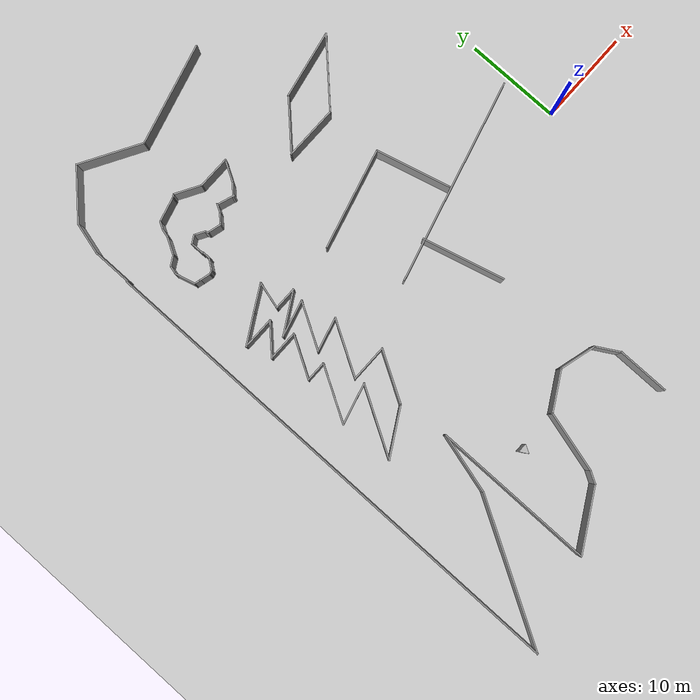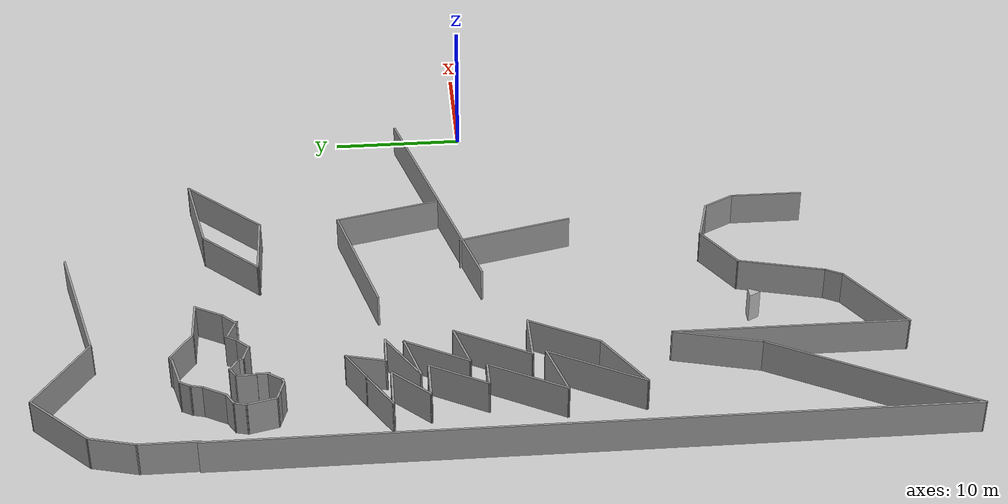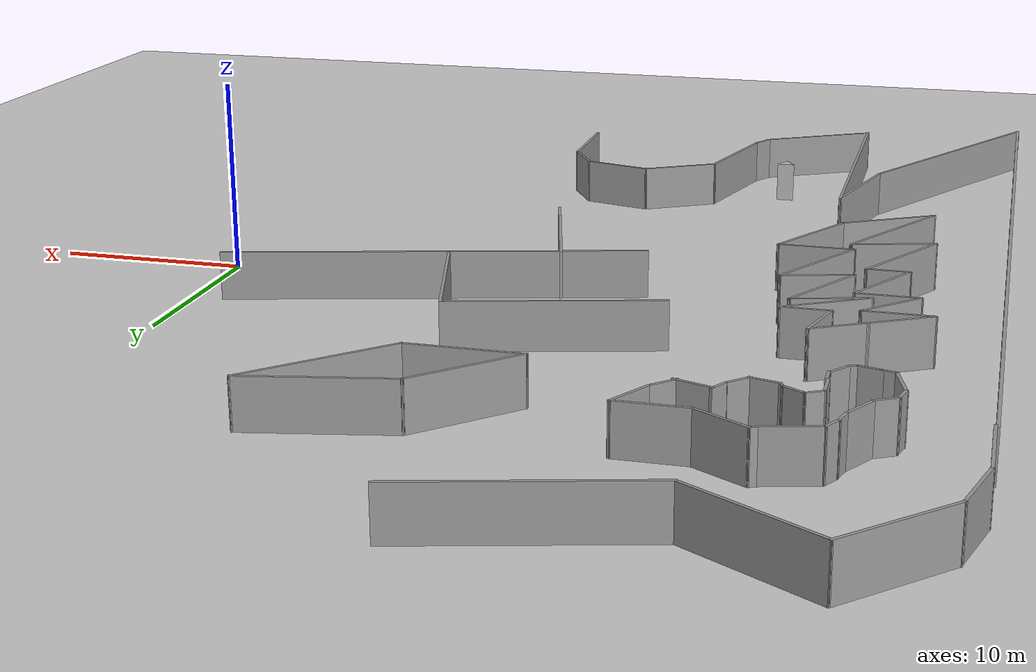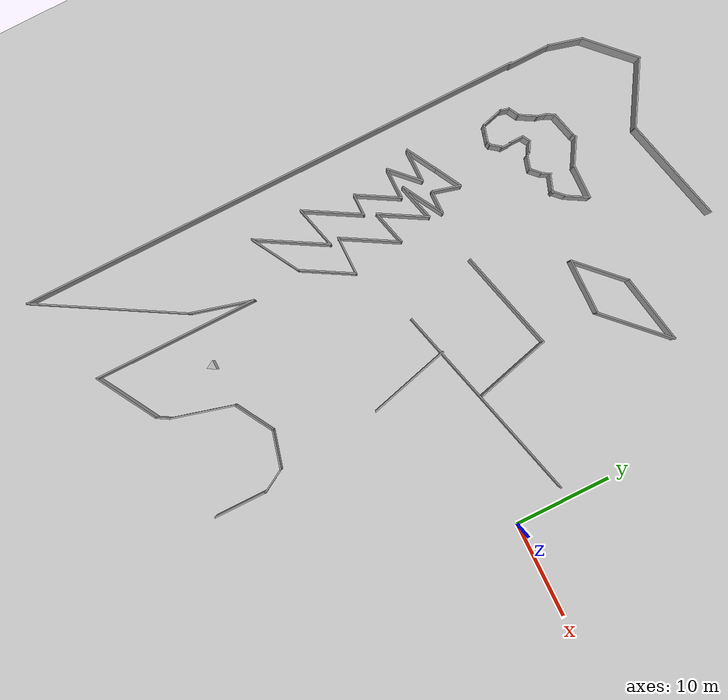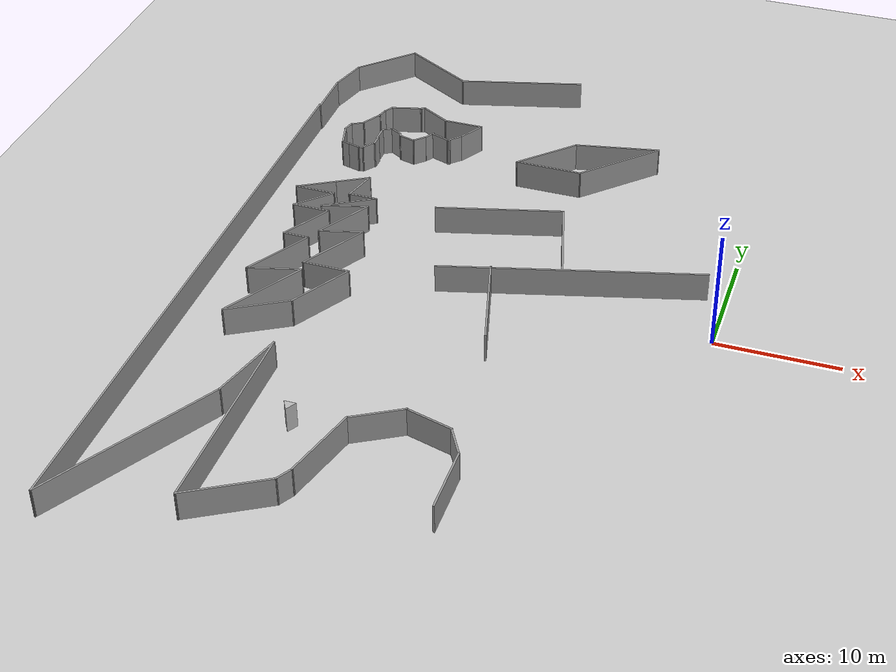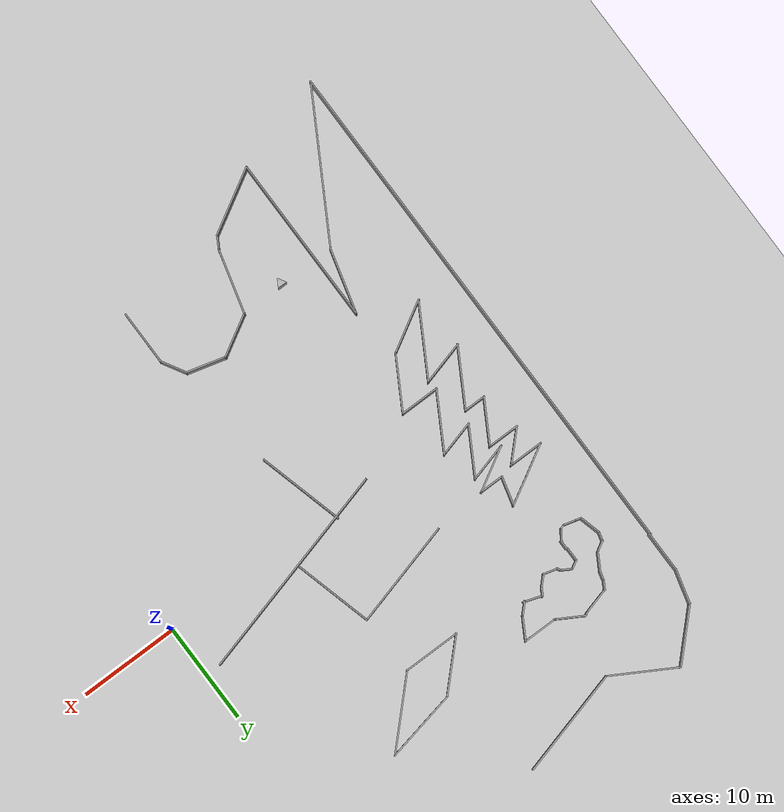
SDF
<sdf version="1.7">
 <world name="default">
  <model name="ground_plane">
   <static>1</static>
   <link name="link">
    <collision name="collision">
     <geometry><plane><normal>0 0 1</normal><size>100 100</size></plane></geometry>
     <surface><friction><ode><mu>100</mu><mu2>50</mu2></ode></friction></surface>
    </collision>
    <visual name="visual">
     <cast_shadows>0</cast_shadows>
     <geometry><plane><normal>0 0 1</normal><size>100 100</size></plane></geometry>
     <material>
      <script><uri>file://media/materials/scripts/gazebo.material</uri><name>Gazebo/Grey</name></script>
     </material>
    </visual>
   </link>
  </model>
  <model name="custommap5">
   <pose>6.86711 -0.856109 0 0 -0 0</pose>
   <link name="Wall_10">
    <collision name="Wall_10_Collision">
     <geometry><box><size>6.5 0.15 2.5</size></box></geometry>
     <pose>0 0 1.25 0 -0 0</pose>
    </collision>
    <visual name="Wall_10_Visual">
     <pose>0 0 1.25 0 -0 0</pose>
     <geometry><box><size>6.5 0.15 2.5</size></box></geometry>
     <material>
      <script><uri>file://media/materials/scripts/gazebo.material</uri><name>Gazebo/Grey</name></script>
      <ambient>1 1 1 1</ambient>
     </material>
     <meta><layer>0</layer></meta>
    </visual>
    <pose>-30.3175 -21.4493 0 0 -0 1.309</pose>
   </link>
   <link name="Wall_100">
    <collision name="Wall_100_Collision">
     <geometry><box><size>3.25 0.15 2.5</size></box></geometry>
     <pose>0 0 1.25 0 -0 0</pose>
    </collision>
    <visual name="Wall_100_Visual">
     <pose>0 0 1.25 0 -0 0</pose>
     <geometry><box><size>3.25 0.15 2.5</size></box></geometry>
     <material>
      <script><uri>file://media/materials/scripts/gazebo.material</uri><name>Gazebo/Grey</name></script>
      <ambient>1 1 1 1</ambient>
     </material>
     <meta><layer>0</layer></meta>
    </visual>
    <pose>-41.7743 4.90897 0 0 -0 0</pose>
   </link>
   <link name="Wall_101">
    <collision name="Wall_101_Collision">
     <geometry><box><size>4.75 0.15 2.5</size></box></geometry>
     <pose>0 0 1.25 0 -0 0</pose>
    </collision>
    <visual name="Wall_101_Visual">
     <pose>0 0 1.25 0 -0 0</pose>
     <geometry><box><size>4.75 0.15 2.5</size></box></geometry>
     <material>
      <script><uri>file://media/materials/scripts/gazebo.material</uri><name>Gazebo/Grey</name></script>
      <ambient>1 1 1 1</ambient>
     </material>
     <meta><layer>0</layer></meta>
    </visual>
    <pose>-41.3743 2.91711 0 0 -0 -2.0944</pose>
   </link>
   <link name="Wall_102">
    <collision name="Wall_102_Collision">
     <geometry><box><size>2.25 0.15 2.5</size></box></geometry>
     <pose>0 0 1.25 0 -0 0</pose>
    </collision>
    <visual name="Wall_102_Visual">
     <pose>0 0 1.25 0 -0 0</pose>
     <geometry><box><size>2.25 0.15 2.5</size></box></geometry>
     <material>
      <script><uri>file://media/materials/scripts/gazebo.material</uri><name>Gazebo/Grey</name></script>
      <ambient>1 1 1 1</ambient>
     </material>
     <meta><layer>0</layer></meta>
    </visual>
    <pose>-41.4743 0.925256 0 0 -0 0</pose>
   </link>
   <link name="Wall_103">
    <collision name="Wall_103_Collision">
     <geometry><box><size>6.25 0.15 2.5</size></box></geometry>
     <pose>0 0 1.25 0 -0 0</pose>
    </collision>
    <visual name="Wall_103_Visual">
     <pose>0 0 1.25 0 -0 0</pose>
     <geometry><box><size>6.25 0.15 2.5</size></box></geometry>
     <material>
      <script><uri>file://media/materials/scripts/gazebo.material</uri><name>Gazebo/Grey</name></script>
      <ambient>1 1 1 1</ambient>
     </material>
     <meta><layer>0</layer></meta>
    </visual>
    <pose>-41.9493 -1.71612 0 0 -0 -2.0944</pose>
   </link>
   <link name="Wall_104">
    <collision name="Wall_104_Collision">
     <geometry><box><size>4.5 0.15 2.5</size></box></geometry>
     <pose>0 0 1.25 0 -0 0</pose>
    </collision>
    <visual name="Wall_104_Visual">
     <pose>0 0 1.25 0 -0 0</pose>
     <geometry><box><size>4.5 0.15 2.5</size></box></geometry>
     <material>
      <script><uri>file://media/materials/scripts/gazebo.material</uri><name>Gazebo/Grey</name></script>
      <ambient>1 1 1 1</ambient>
     </material>
     <meta><layer>0</layer></meta>
    </visual>
    <pose>-41.3734 -3.79457 0 0 -0 0.261799</pose>
   </link>
   <link name="Wall_105">
    <collision name="Wall_105_Collision">
     <geometry><box><size>7.75 0.15 2.5</size></box></geometry>
     <pose>0 0 1.25 0 -0 0</pose>
    </collision>
    <visual name="Wall_105_Visual">
     <pose>0 0 1.25 0 -0 0</pose>
     <geometry><box><size>7.75 0.15 2.5</size></box></geometry>
     <material>
      <script><uri>file://media/materials/scripts/gazebo.material</uri><name>Gazebo/Grey</name></script>
      <ambient>1 1 1 1</ambient>
     </material>
     <meta><layer>0</layer></meta>
    </visual>
    <pose>-41.1725 -6.52253 0 0 -0 -2.0944</pose>
   </link>
   <link name="Wall_106">
    <collision name="Wall_106_Collision">
     <geometry><box><size>5.5 0.15 2.5</size></box></geometry>
     <pose>0 0 1.25 0 -0 0</pose>
    </collision>
    <visual name="Wall_106_Visual">
     <pose>0 0 1.25 0 -0 0</pose>
     <geometry><box><size>5.5 0.15 2.5</size></box></geometry>
     <material>
      <script><uri>file://media/materials/scripts/gazebo.material</uri><name>Gazebo/Grey</name></script>
      <ambient>1 1 1 1</ambient>
     </material>
     <meta><layer>0</layer></meta>
    </visual>
    <pose>-40.7559 -8.47593 0 0 -0 0.523599</pose>
   </link>
   <link name="Wall_107">
    <collision name="Wall_107_Collision">
     <geometry><box><size>5.75 0.15 2.5</size></box></geometry>
     <pose>0 0 1.25 0 -0 0</pose>
    </collision>
    <visual name="Wall_107_Visual">
     <pose>0 0 1.25 0 -0 0</pose>
     <geometry><box><size>5.75 0.15 2.5</size></box></geometry>
     <material>
      <script><uri>file://media/materials/scripts/gazebo.material</uri><name>Gazebo/Grey</name></script>
      <ambient>1 1 1 1</ambient>
     </material>
     <meta><layer>0</layer></meta>
    </visual>
    <pose>-37.0393 -4.71356 0 0 -0 1.0472</pose>
   </link>
   <link name="Wall_108">
    <collision name="Wall_108_Collision">
     <geometry><box><size>4 0.15 2.5</size></box></geometry>
     <pose>0 0 1.25 0 -0 0</pose>
    </collision>
    <visual name="Wall_108_Visual">
     <pose>0 0 1.25 0 -0 0</pose>
     <geometry><box><size>4 0.15 2.5</size></box></geometry>
     <material>
      <script><uri>file://media/materials/scripts/gazebo.material</uri><name>Gazebo/Grey</name></script>
      <ambient>1 1 1 1</ambient>
     </material>
     <meta><layer>0</layer></meta>
    </visual>
    <pose>-37.5643 -2.28869 0 0 -0 3.14159</pose>
   </link>
   <link name="Wall_109">
    <collision name="Wall_109_Collision">
     <geometry><box><size>6.25 0.15 2.5</size></box></geometry>
     <pose>0 0 1.25 0 -0 0</pose>
    </collision>
    <visual name="Wall_109_Visual">
     <pose>0 0 1.25 0 -0 0</pose>
     <geometry><box><size>6.25 0.15 2.5</size></box></geometry>
     <material>
      <script><uri>file://media/materials/scripts/gazebo.material</uri><name>Gazebo/Grey</name></script>
      <ambient>1 1 1 1</ambient>
     </material>
     <meta><layer>0</layer></meta>
    </visual>
    <pose>-37.9643 0.352691 0 0 -0 1.0472</pose>
   </link>
   <link name="Wall_11">
    <collision name="Wall_11_Collision">
     <geometry><box><size>4.5 0.15 2.5</size></box></geometry>
     <pose>0 0 1.25 0 -0 0</pose>
    </collision>
    <visual name="Wall_11_Visual">
     <pose>0 0 1.25 0 -0 0</pose>
     <geometry><box><size>4.5 0.15 2.5</size></box></geometry>
     <material>
      <script><uri>file://media/materials/scripts/gazebo.material</uri><name>Gazebo/Grey</name></script>
      <ambient>1 1 1 1</ambient>
     </material>
     <meta><layer>0</layer></meta>
    </visual>
    <pose>-27.6121 -17.295 0 0 -0 0.523599</pose>
   </link>
   <link name="Wall_110">
    <collision name="Wall_110_Collision">
     <geometry><box><size>3.75 0.15 2.5</size></box></geometry>
     <pose>0 0 1.25 0 -0 0</pose>
    </collision>
    <visual name="Wall_110_Visual">
     <pose>0 0 1.25 0 -0 0</pose>
     <geometry><box><size>3.75 0.15 2.5</size></box></geometry>
     <material>
      <script><uri>file://media/materials/scripts/gazebo.material</uri><name>Gazebo/Grey</name></script>
      <ambient>1 1 1 1</ambient>
     </material>
     <meta><layer>0</layer></meta>
    </visual>
    <pose>-38.1779 2.52819 0 0 -0 -2.87979</pose>
   </link>
   <link name="Wall_111">
    <collision name="Wall_111_Collision">
     <geometry><box><size>5.25 0.15 2.5</size></box></geometry>
     <pose>0 0 1.25 0 -0 0</pose>
    </collision>
    <visual name="Wall_111_Visual">
     <pose>0 0 1.25 0 -0 0</pose>
     <geometry><box><size>5.25 0.15 2.5</size></box></geometry>
     <material>
      <script><uri>file://media/materials/scripts/gazebo.material</uri><name>Gazebo/Grey</name></script>
      <ambient>1 1 1 1</ambient>
     </material>
     <meta><layer>0</layer></meta>
    </visual>
    <pose>-38.6416 4.27068 0 0 -0 1.0472</pose>
   </link>
   <link name="Wall_112">
    <collision name="Wall_112_Collision">
     <geometry><box><size>4 0.15 2.5</size></box></geometry>
     <pose>0 0 1.25 0 -0 0</pose>
    </collision>
    <visual name="Wall_112_Visual">
     <pose>0 0 1.25 0 -0 0</pose>
     <geometry><box><size>4 0.15 2.5</size></box></geometry>
     <material>
      <script><uri>file://media/materials/scripts/gazebo.material</uri><name>Gazebo/Grey</name></script>
      <ambient>1 1 1 1</ambient>
     </material>
     <meta><layer>0</layer></meta>
    </visual>
    <pose>-39.226 5.98082 0 0 -0 -2.87979</pose>
   </link>
   <link name="Wall_113">
    <collision name="Wall_113_Collision">
     <geometry><box><size>4.75 0.15 2.5</size></box></geometry>
     <pose>0 0 1.25 0 -0 0</pose>
    </collision>
    <visual name="Wall_113_Visual">
     <pose>0 0 1.25 0 -0 0</pose>
     <geometry><box><size>4.75 0.15 2.5</size></box></geometry>
     <material>
      <script><uri>file://media/materials/scripts/gazebo.material</uri><name>Gazebo/Grey</name></script>
      <ambient>1 1 1 1</ambient>
     </material>
     <meta><layer>0</layer></meta>
    </visual>
    <pose>-39.0936 6.6326 0 0 -0 0.523599</pose>
   </link>
   <link name="Wall_114">
    <collision name="Wall_114_Collision">
     <geometry><box><size>2.5 0.15 2.5</size></box></geometry>
     <pose>0 0 1.25 0 -0 0</pose>
    </collision>
    <visual name="Wall_114_Visual">
     <pose>0 0 1.25 0 -0 0</pose>
     <geometry><box><size>2.5 0.15 2.5</size></box></geometry>
     <material>
      <script><uri>file://media/materials/scripts/gazebo.material</uri><name>Gazebo/Grey</name></script>
      <ambient>1 1 1 1</ambient>
     </material>
     <meta><layer>0</layer></meta>
    </visual>
    <pose>-38.2767 7.7826 0 0 -0 3.14159</pose>
   </link>
   <link name="Wall_115">
    <collision name="Wall_115_Collision">
     <geometry><box><size>3 0.15 2.5</size></box></geometry>
     <pose>0 0 1.25 0 -0 0</pose>
    </collision>
    <visual name="Wall_115_Visual">
     <pose>0 0 1.25 0 -0 0</pose>
     <geometry><box><size>3 0.15 2.5</size></box></geometry>
     <material>
      <script><uri>file://media/materials/scripts/gazebo.material</uri><name>Gazebo/Grey</name></script>
      <ambient>1 1 1 1</ambient>
     </material>
     <meta><layer>0</layer></meta>
    </visual>
    <pose>-39.0829 9.15904 0 0 -0 1.309</pose>
   </link>
   <link name="Wall_116">
    <collision name="Wall_116_Collision">
     <geometry><box><size>3.02994 0.15 2.5</size></box></geometry>
     <pose>0 0 1.25 0 -0 0</pose>
    </collision>
    <visual name="Wall_116_Visual">
     <pose>0 0 1.25 0 -0 0</pose>
     <geometry><box><size>3.02994 0.15 2.5</size></box></geometry>
     <material>
      <script><uri>file://media/materials/scripts/gazebo.material</uri><name>Gazebo/Grey</name></script>
      <ambient>1 1 1 1</ambient>
     </material>
     <meta><layer>0</layer></meta>
    </visual>
    <pose>-39.9708 9.83252 0 0 -0 -2.63159</pose>
   </link>
   <link name="Wall_12">
    <collision name="Wall_12_Collision">
     <geometry><box><size>4 0.15 2.5</size></box></geometry>
     <pose>0 0 1.25 0 -0 0</pose>
    </collision>
    <visual name="Wall_12_Visual">
     <pose>0 0 1.25 0 -0 0</pose>
     <geometry><box><size>4 0.15 2.5</size></box></geometry>
     <material>
      <script><uri>file://media/materials/scripts/gazebo.material</uri><name>Gazebo/Grey</name></script>
      <ambient>1 1 1 1</ambient>
     </material>
     <meta><layer>0</layer></meta>
    </visual>
    <pose>-23.8691 -16.7057 0 0 -0 -0.261799</pose>
   </link>
   <link name="Wall_13">
    <collision name="Wall_13_Collision">
     <geometry><box><size>2.75 0.15 2.5</size></box></geometry>
     <pose>0 0 1.25 0 -0 0</pose>
    </collision>
    <visual name="Wall_13_Visual">
     <pose>0 0 1.25 0 -0 0</pose>
     <geometry><box><size>2.75 0.15 2.5</size></box></geometry>
     <material>
      <script><uri>file://media/materials/scripts/gazebo.material</uri><name>Gazebo/Grey</name></script>
      <ambient>1 1 1 1</ambient>
     </material>
     <meta><layer>0</layer></meta>
    </visual>
    <pose>-21.3597 -18.3297 0 0 -0 -1.0472</pose>
   </link>
   <link name="Wall_14">
    <collision name="Wall_14_Collision">
     <geometry><box><size>5.5 0.15 2.5</size></box></geometry>
     <pose>0 0 1.25 0 -0 0</pose>
    </collision>
    <visual name="Wall_14_Visual">
     <pose>0 0 1.25 0 -0 0</pose>
     <geometry><box><size>5.5 0.15 2.5</size></box></geometry>
     <material>
      <script><uri>file://media/materials/scripts/gazebo.material</uri><name>Gazebo/Grey</name></script>
      <ambient>1 1 1 1</ambient>
     </material>
     <meta><layer>0</layer></meta>
    </visual>
    <pose>-20.7097 -22.1306 0 0 -0 -1.5708</pose>
   </link>
   <link name="Wall_141">
    <collision name="Wall_141_Collision">
     <geometry><box><size>6 0.15 2.5</size></box></geometry>
     <pose>0 0 1.25 0 -0 0</pose>
    </collision>
    <visual name="Wall_141_Visual">
     <pose>0 0 1.25 0 -0 0</pose>
     <geometry><box><size>6 0.15 2.5</size></box></geometry>
     <material>
      <script><uri>file://media/materials/scripts/gazebo.material</uri><name>Gazebo/Grey</name></script>
      <ambient>1 1 1 1</ambient>
     </material>
     <meta><layer>0</layer></meta>
    </visual>
    <pose>-25.3943 18.86 0 0 -0 -2.35619</pose>
   </link>
   <link name="Wall_142">
    <collision name="Wall_142_Collision">
     <geometry><box><size>5.75 0.15 2.5</size></box></geometry>
     <pose>0 0 1.25 0 -0 0</pose>
    </collision>
    <visual name="Wall_142_Visual">
     <pose>0 0 1.25 0 -0 0</pose>
     <geometry><box><size>5.75 0.15 2.5</size></box></geometry>
     <material>
      <script><uri>file://media/materials/scripts/gazebo.material</uri><name>Gazebo/Grey</name></script>
      <ambient>1 1 1 1</ambient>
     </material>
     <meta><layer>0</layer></meta>
    </visual>
    <pose>-24.6626 16.7917 0 0 -0 0</pose>
   </link>
   <link name="Wall_143">
    <collision name="Wall_143_Collision">
     <geometry><box><size>8 0.15 2.5</size></box></geometry>
     <pose>0 0 1.25 0 -0 0</pose>
    </collision>
    <visual name="Wall_143_Visual">
     <pose>0 0 1.25 0 -0 0</pose>
     <geometry><box><size>8 0.15 2.5</size></box></geometry>
     <material>
      <script><uri>file://media/materials/scripts/gazebo.material</uri><name>Gazebo/Grey</name></script>
      <ambient>1 1 1 1</ambient>
     </material>
     <meta><layer>0</layer></meta>
    </visual>
    <pose>-19.0872 19.5671 0 0 -0 0.785398</pose>
   </link>
   <link name="Wall_144">
    <collision name="Wall_144_Collision">
     <geometry><box><size>7.30536 0.15 2.5</size></box></geometry>
     <pose>0 0 1.25 0 -0 0</pose>
    </collision>
    <visual name="Wall_144_Visual">
     <pose>0 0 1.25 0 -0 0</pose>
     <geometry><box><size>7.30536 0.15 2.5</size></box></geometry>
     <material>
      <script><uri>file://media/materials/scripts/gazebo.material</uri><name>Gazebo/Grey</name></script>
      <ambient>1 1 1 1</ambient>
     </material>
     <meta><layer>0</layer></meta>
    </visual>
    <pose>-19.8189 21.6354 0 0 -0 -2.94264</pose>
   </link>
   <link name="Wall_32">
    <collision name="Wall_32_Collision">
     <geometry><box><size>11 0.15 2.5</size></box></geometry>
     <pose>0 0 1.25 0 -0 0</pose>
    </collision>
    <visual name="Wall_32_Visual">
     <pose>0 0 1.25 0 -0 0</pose>
     <geometry><box><size>11 0.15 2.5</size></box></geometry>
     <material>
      <script><uri>file://media/materials/scripts/gazebo.material</uri><name>Gazebo/Grey</name></script>
      <ambient>1 1 1 1</ambient>
     </material>
     <meta><layer>0</layer></meta>
    </visual>
    <pose>-30.9107 29.5309 0 0 -0 -2.87979</pose>
   </link>
   <link name="Wall_33">
    <collision name="Wall_33_Collision">
     <geometry><box><size>7 0.15 2.5</size></box></geometry>
     <pose>0 0 1.25 0 -0 0</pose>
    </collision>
    <visual name="Wall_33_Visual">
     <pose>0 0 1.25 0 -0 0</pose>
     <geometry><box><size>7 0.15 2.5</size></box></geometry>
     <material>
      <script><uri>file://media/materials/scripts/gazebo.material</uri><name>Gazebo/Grey</name></script>
      <ambient>1 1 1 1</ambient>
     </material>
     <meta><layer>0</layer></meta>
    </visual>
    <pose>-39.117 29.8393 0 0 -0 2.61799</pose>
   </link>
   <link name="Wall_34">
    <collision name="Wall_34_Collision">
     <geometry><box><size>6 0.15 2.5</size></box></geometry>
     <pose>0 0 1.25 0 -0 0</pose>
    </collision>
    <visual name="Wall_34_Visual">
     <pose>0 0 1.25 0 -0 0</pose>
     <geometry><box><size>6 0.15 2.5</size></box></geometry>
     <material>
      <script><uri>file://media/materials/scripts/gazebo.material</uri><name>Gazebo/Grey</name></script>
      <ambient>1 1 1 1</ambient>
     </material>
     <meta><layer>0</layer></meta>
    </visual>
    <pose>-44.1514 29.4835 0 0 -0 -2.35619</pose>
   </link>
   <link name="Wall_35">
    <collision name="Wall_35_Collision">
     <geometry><box><size>3.5 0.15 2.5</size></box></geometry>
     <pose>0 0 1.25 0 -0 0</pose>
    </collision>
    <visual name="Wall_35_Visual">
     <pose>0 0 1.25 0 -0 0</pose>
     <geometry><box><size>3.5 0.15 2.5</size></box></geometry>
     <material>
      <script><uri>file://media/materials/scripts/gazebo.material</uri><name>Gazebo/Grey</name></script>
      <ambient>1 1 1 1</ambient>
     </material>
     <meta><layer>0</layer></meta>
    </visual>
    <pose>-46.6532 25.7973 0 0 -0 -1.8326</pose>
   </link>
   <link name="Wall_36">
    <collision name="Wall_36_Collision">
     <geometry><box><size>4.25 0.15 2.5</size></box></geometry>
     <pose>0 0 1.25 0 -0 0</pose>
    </collision>
    <visual name="Wall_36_Visual">
     <pose>0 0 1.25 0 -0 0</pose>
     <geometry><box><size>4.25 0.15 2.5</size></box></geometry>
     <material>
      <script><uri>file://media/materials/scripts/gazebo.material</uri><name>Gazebo/Grey</name></script>
      <ambient>1 1 1 1</ambient>
     </material>
     <meta><layer>0</layer></meta>
    </visual>
    <pose>-47.0867 22.1294 0 0 -0 -1.5708</pose>
   </link>
   <link name="Wall_4">
    <collision name="Wall_4_Collision">
     <geometry><box><size>52.25 0.15 2.5</size></box></geometry>
     <pose>0 0 1.25 0 -0 0</pose>
    </collision>
    <visual name="Wall_4_Visual">
     <pose>0 0 1.25 0 -0 0</pose>
     <geometry><box><size>52.25 0.15 2.5</size></box></geometry>
     <material>
      <script><uri>file://media/materials/scripts/gazebo.material</uri><name>Gazebo/Grey</name></script>
      <ambient>1 1 1 1</ambient>
     </material>
     <meta><layer>0</layer></meta>
    </visual>
    <pose>-47.19 -5.85385 0 0 -0 -1.5708</pose>
   </link>
   <link name="Wall_5">
    <collision name="Wall_5_Collision">
     <geometry><box><size>15.75 0.15 2.5</size></box></geometry>
     <pose>0 0 1.25 0 -0 0</pose>
    </collision>
    <visual name="Wall_5_Visual">
     <pose>0 0 1.25 0 -0 0</pose>
     <geometry><box><size>15.75 0.15 2.5</size></box></geometry>
     <material>
      <script><uri>file://media/materials/scripts/gazebo.material</uri><name>Gazebo/Grey</name></script>
      <ambient>1 1 1 1</ambient>
     </material>
     <meta><layer>0</layer></meta>
    </visual>
    <pose>-43.29 -25.1488 0 0 -0 1.0472</pose>
   </link>
   <link name="Wall_54">
    <collision name="Wall_54_Collision">
     <geometry><box><size>21.75 0.15 2.5</size></box></geometry>
     <pose>0 0 1.25 0 -0 0</pose>
    </collision>
    <visual name="Wall_54_Visual">
     <pose>0 0 1.25 0 -0 0</pose>
     <geometry><box><size>21.75 0.15 2.5</size></box></geometry>
     <material>
      <script><uri>file://media/materials/scripts/gazebo.material</uri><name>Gazebo/Grey</name></script>
      <ambient>1 1 1 1</ambient>
     </material>
     <meta><layer>0</layer></meta>
    </visual>
    <pose>-18.8814 3.30365 0 0 -0 -2.87979</pose>
   </link>
   <link name="Wall_56">
    <collision name="Wall_56_Collision">
     <geometry><box><size>8 0.15 2.5</size></box></geometry>
     <pose>0 0 1.25 0 -0 0</pose>
    </collision>
    <visual name="Wall_56_Visual">
     <pose>0 0 1.25 0 -0 0</pose>
     <geometry><box><size>8 0.15 2.5</size></box></geometry>
     <material>
      <script><uri>file://media/materials/scripts/gazebo.material</uri><name>Gazebo/Grey</name></script>
      <ambient>1 1 1 1</ambient>
     </material>
     <meta><layer>0</layer></meta>
    </visual>
    <pose>-20.657 7.09223 0 0 -0 1.8326</pose>
   </link>
   <link name="Wall_57">
    <collision name="Wall_57_Collision">
     <geometry><box><size>10.75 0.15 2.5</size></box></geometry>
     <pose>0 0 1.25 0 -0 0</pose>
    </collision>
    <visual name="Wall_57_Visual">
     <pose>0 0 1.25 0 -0 0</pose>
     <geometry><box><size>10.75 0.15 2.5</size></box></geometry>
     <material>
      <script><uri>file://media/materials/scripts/gazebo.material</uri><name>Gazebo/Grey</name></script>
      <ambient>1 1 1 1</ambient>
     </material>
     <meta><layer>0</layer></meta>
    </visual>
    <pose>-26.7923 9.51174 0 0 -0 -2.87979</pose>
   </link>
   <link name="Wall_6">
    <collision name="Wall_6_Collision">
     <geometry><box><size>6.5 0.15 2.5</size></box></geometry>
     <pose>0 0 1.25 0 -0 0</pose>
    </collision>
    <visual name="Wall_6_Visual">
     <pose>0 0 1.25 0 -0 0</pose>
     <geometry><box><size>6.5 0.15 2.5</size></box></geometry>
     <material>
      <script><uri>file://media/materials/scripts/gazebo.material</uri><name>Gazebo/Grey</name></script>
      <ambient>1 1 1 1</ambient>
     </material>
     <meta><layer>0</layer></meta>
    </visual>
    <pose>-38.5682 -15.327 0 0 -0 1.309</pose>
   </link>
   <link name="Wall_60">
    <collision name="Wall_60_Collision">
     <geometry><box><size>8.75 0.15 2.5</size></box></geometry>
     <pose>0 0 1.25 0 -0 0</pose>
    </collision>
    <visual name="Wall_60_Visual">
     <pose>0 0 1.25 0 -0 0</pose>
     <geometry><box><size>8.75 0.15 2.5</size></box></geometry>
     <material>
      <script><uri>file://media/materials/scripts/gazebo.material</uri><name>Gazebo/Grey</name></script>
      <ambient>1 1 1 1</ambient>
     </material>
     <meta><layer>0</layer></meta>
    </visual>
    <pose>-24.0165 -2.35909 0 0 -0 -1.309</pose>
   </link>
   <link name="Wall_68">
    <collision name="Wall_68_Collision">
     <geometry><box><size>2.5 0.15 2.5</size></box></geometry>
     <pose>0 0 1.25 0 -0 0</pose>
    </collision>
    <visual name="Wall_68_Visual">
     <pose>0 0 1.25 0 -0 0</pose>
     <geometry><box><size>2.5 0.15 2.5</size></box></geometry>
     <material>
      <script><uri>file://media/materials/scripts/gazebo.material</uri><name>Gazebo/Grey</name></script>
      <ambient>1 1 1 1</ambient>
     </material>
     <meta><layer>0</layer></meta>
    </visual>
    <pose>-32.7205 20.1376 0 0 -0 1.0472</pose>
   </link>
   <link name="Wall_69">
    <collision name="Wall_69_Collision">
     <geometry><box><size>3.5 0.15 2.5</size></box></geometry>
     <pose>0 0 1.25 0 -0 0</pose>
    </collision>
    <visual name="Wall_69_Visual">
     <pose>0 0 1.25 0 -0 0</pose>
     <geometry><box><size>3.5 0.15 2.5</size></box></geometry>
     <material>
      <script><uri>file://media/materials/scripts/gazebo.material</uri><name>Gazebo/Grey</name></script>
      <ambient>1 1 1 1</ambient>
     </material>
     <meta><layer>0</layer></meta>
    </visual>
    <pose>-33.808 21.1552 0 0 -0 3.14159</pose>
   </link>
   <link name="Wall_7">
    <collision name="Wall_7_Collision">
     <geometry><box><size>17 0.15 2.5</size></box></geometry>
     <pose>0 0 1.25 0 -0 0</pose>
    </collision>
    <visual name="Wall_7_Visual">
     <pose>0 0 1.25 0 -0 0</pose>
     <geometry><box><size>17 0.15 2.5</size></box></geometry>
     <material>
      <script><uri>file://media/materials/scripts/gazebo.material</uri><name>Gazebo/Grey</name></script>
      <ambient>1 1 1 1</ambient>
     </material>
     <meta><layer>0</layer></meta>
    </visual>
    <pose>-37.7465 -20.6852 0 0 -0 -1.5708</pose>
   </link>
   <link name="Wall_70">
    <collision name="Wall_70_Collision">
     <geometry><box><size>3 0.15 2.5</size></box></geometry>
     <pose>0 0 1.25 0 -0 0</pose>
    </collision>
    <visual name="Wall_70_Visual">
     <pose>0 0 1.25 0 -0 0</pose>
     <geometry><box><size>3 0.15 2.5</size></box></geometry>
     <material>
      <script><uri>file://media/materials/scripts/gazebo.material</uri><name>Gazebo/Grey</name></script>
      <ambient>1 1 1 1</ambient>
     </material>
     <meta><layer>0</layer></meta>
    </visual>
    <pose>-36.717 21.8677 0 0 -0 2.61799</pose>
   </link>
   <link name="Wall_71">
    <collision name="Wall_71_Collision">
     <geometry><box><size>0.5 0.15 2.5</size></box></geometry>
     <pose>0 0 1.25 0 -0 0</pose>
    </collision>
    <visual name="Wall_71_Visual">
     <pose>0 0 1.25 0 -0 0</pose>
     <geometry><box><size>0.5 0.15 2.5</size></box></geometry>
     <material>
      <script><uri>file://media/materials/scripts/gazebo.material</uri><name>Gazebo/Grey</name></script>
      <ambient>1 1 1 1</ambient>
     </material>
     <meta><layer>0</layer></meta>
    </visual>
    <pose>-38.1027 22.4927 0 0 -0 -2.61799</pose>
   </link>
   <link name="Wall_72">
    <collision name="Wall_72_Collision">
     <geometry><box><size>2.75 0.15 2.5</size></box></geometry>
     <pose>0 0 1.25 0 -0 0</pose>
    </collision>
    <visual name="Wall_72_Visual">
     <pose>0 0 1.25 0 -0 0</pose>
     <geometry><box><size>2.75 0.15 2.5</size></box></geometry>
     <material>
      <script><uri>file://media/materials/scripts/gazebo.material</uri><name>Gazebo/Grey</name></script>
      <ambient>1 1 1 1</ambient>
     </material>
     <meta><layer>0</layer></meta>
    </visual>
    <pose>-39.5099 22.0687 0 0 -0 -2.87979</pose>
   </link>
   <link name="Wall_73">
    <collision name="Wall_73_Collision">
     <geometry><box><size>1 0.15 2.5</size></box></geometry>
     <pose>0 0 1.25 0 -0 0</pose>
    </collision>
    <visual name="Wall_73_Visual">
     <pose>0 0 1.25 0 -0 0</pose>
     <geometry><box><size>1 0.15 2.5</size></box></geometry>
     <material>
      <script><uri>file://media/materials/scripts/gazebo.material</uri><name>Gazebo/Grey</name></script>
      <ambient>1 1 1 1</ambient>
     </material>
     <meta><layer>0</layer></meta>
    </visual>
    <pose>-40.9781 21.3642 0 0 -0 -2.0944</pose>
   </link>
   <link name="Wall_74">
    <collision name="Wall_74_Collision">
     <geometry><box><size>1 0.15 2.5</size></box></geometry>
     <pose>0 0 1.25 0 -0 0</pose>
    </collision>
    <visual name="Wall_74_Visual">
     <pose>0 0 1.25 0 -0 0</pose>
     <geometry><box><size>1 0.15 2.5</size></box></geometry>
     <material>
      <script><uri>file://media/materials/scripts/gazebo.material</uri><name>Gazebo/Grey</name></script>
      <ambient>1 1 1 1</ambient>
     </material>
     <meta><layer>0</layer></meta>
    </visual>
    <pose>-41.3006 20.5856 0 0 -0 -1.8326</pose>
   </link>
   <link name="Wall_75">
    <collision name="Wall_75_Collision">
     <geometry><box><size>2 0.15 2.5</size></box></geometry>
     <pose>0 0 1.25 0 -0 0</pose>
    </collision>
    <visual name="Wall_75_Visual">
     <pose>0 0 1.25 0 -0 0</pose>
     <geometry><box><size>2 0.15 2.5</size></box></geometry>
     <material>
      <script><uri>file://media/materials/scripts/gazebo.material</uri><name>Gazebo/Grey</name></script>
      <ambient>1 1 1 1</ambient>
     </material>
     <meta><layer>0</layer></meta>
    </visual>
    <pose>-41.8731 19.374 0 0 -0 -2.0944</pose>
   </link>
   <link name="Wall_76">
    <collision name="Wall_76_Collision">
     <geometry><box><size>1.25 0.15 2.5</size></box></geometry>
     <pose>0 0 1.25 0 -0 0</pose>
    </collision>
    <visual name="Wall_76_Visual">
     <pose>0 0 1.25 0 -0 0</pose>
     <geometry><box><size>1.25 0.15 2.5</size></box></geometry>
     <material>
      <script><uri>file://media/materials/scripts/gazebo.material</uri><name>Gazebo/Grey</name></script>
      <ambient>1 1 1 1</ambient>
     </material>
     <meta><layer>0</layer></meta>
    </visual>
    <pose>-42.812 18.298 0 0 -0 -2.61799</pose>
   </link>
   <link name="Wall_77">
    <collision name="Wall_77_Collision">
     <geometry><box><size>1 0.15 2.5</size></box></geometry>
     <pose>0 0 1.25 0 -0 0</pose>
    </collision>
    <visual name="Wall_77_Visual">
     <pose>0 0 1.25 0 -0 0</pose>
     <geometry><box><size>1 0.15 2.5</size></box></geometry>
     <material>
      <script><uri>file://media/materials/scripts/gazebo.material</uri><name>Gazebo/Grey</name></script>
      <ambient>1 1 1 1</ambient>
     </material>
     <meta><layer>0</layer></meta>
    </visual>
    <pose>-43.3983 17.6124 0 0 -0 -1.8326</pose>
   </link>
   <link name="Wall_78">
    <collision name="Wall_78_Collision">
     <geometry><box><size>2.25 0.15 2.5</size></box></geometry>
     <pose>0 0 1.25 0 -0 0</pose>
    </collision>
    <visual name="Wall_78_Visual">
     <pose>0 0 1.25 0 -0 0</pose>
     <geometry><box><size>2.25 0.15 2.5</size></box></geometry>
     <material>
      <script><uri>file://media/materials/scripts/gazebo.material</uri><name>Gazebo/Grey</name></script>
      <ambient>1 1 1 1</ambient>
     </material>
     <meta><layer>0</layer></meta>
    </visual>
    <pose>-43.2365 16.1877 0 0 -0 -1.309</pose>
   </link>
   <link name="Wall_79">
    <collision name="Wall_79_Collision">
     <geometry><box><size>0.75 0.15 2.5</size></box></geometry>
     <pose>0 0 1.25 0 -0 0</pose>
    </collision>
    <visual name="Wall_79_Visual">
     <pose>0 0 1.25 0 -0 0</pose>
     <geometry><box><size>0.75 0.15 2.5</size></box></geometry>
     <material>
      <script><uri>file://media/materials/scripts/gazebo.material</uri><name>Gazebo/Grey</name></script>
      <ambient>1 1 1 1</ambient>
     </material>
     <meta><layer>0</layer></meta>
    </visual>
    <pose>-42.675 15.0958 0 0 -0 -0.261799</pose>
   </link>
   <link name="Wall_8">
    <collision name="Wall_8_Collision">
     <geometry><box><size>7 0.15 2.5</size></box></geometry>
     <pose>0 0 1.25 0 -0 0</pose>
    </collision>
    <visual name="Wall_8_Visual">
     <pose>0 0 1.25 0 -0 0</pose>
     <geometry><box><size>7 0.15 2.5</size></box></geometry>
     <material>
      <script><uri>file://media/materials/scripts/gazebo.material</uri><name>Gazebo/Grey</name></script>
      <ambient>1 1 1 1</ambient>
     </material>
     <meta><layer>0</layer></meta>
    </visual>
    <pose>-34.7804 -27.3977 0 0 -0 0.523599</pose>
   </link>
   <link name="Wall_80">
    <collision name="Wall_80_Collision">
     <geometry><box><size>1.25 0.15 2.5</size></box></geometry>
     <pose>0 0 1.25 0 -0 0</pose>
    </collision>
    <visual name="Wall_80_Visual">
     <pose>0 0 1.25 0 -0 0</pose>
     <geometry><box><size>1.25 0.15 2.5</size></box></geometry>
     <material>
      <script><uri>file://media/materials/scripts/gazebo.material</uri><name>Gazebo/Grey</name></script>
      <ambient>1 1 1 1</ambient>
     </material>
     <meta><layer>0</layer></meta>
    </visual>
    <pose>-41.8539 14.8758 0 0 -0 -0.261799</pose>
   </link>
   <link name="Wall_81">
    <collision name="Wall_81_Collision">
     <geometry><box><size>0.5 0.15 2.5</size></box></geometry>
     <pose>0 0 1.25 0 -0 0</pose>
    </collision>
    <visual name="Wall_81_Visual">
     <pose>0 0 1.25 0 -0 0</pose>
     <geometry><box><size>0.5 0.15 2.5</size></box></geometry>
     <material>
      <script><uri>file://media/materials/scripts/gazebo.material</uri><name>Gazebo/Grey</name></script>
      <ambient>1 1 1 1</ambient>
     </material>
     <meta><layer>0</layer></meta>
    </visual>
    <pose>-41.1536 14.7788 0 0 -0 0.261799</pose>
   </link>
   <link name="Wall_82">
    <collision name="Wall_82_Collision">
     <geometry><box><size>1.30071 0.15 2.5</size></box></geometry>
     <pose>0 0 1.25 0 -0 0</pose>
    </collision>
    <visual name="Wall_82_Visual">
     <pose>0 0 1.25 0 -0 0</pose>
     <geometry><box><size>1.30071 0.15 2.5</size></box></geometry>
     <material>
      <script><uri>file://media/materials/scripts/gazebo.material</uri><name>Gazebo/Grey</name></script>
      <ambient>1 1 1 1</ambient>
     </material>
     <meta><layer>0</layer></meta>
    </visual>
    <pose>-40.6434 15.2873 0 0 -0 0.935972</pose>
   </link>
   <link name="Wall_83">
    <collision name="Wall_83_Collision">
     <geometry><box><size>1 0.15 2.5</size></box></geometry>
     <pose>0 0 1.25 0 -0 0</pose>
    </collision>
    <visual name="Wall_83_Visual">
     <pose>0 0 1.25 0 -0 0</pose>
     <geometry><box><size>1 0.15 2.5</size></box></geometry>
     <material>
      <script><uri>file://media/materials/scripts/gazebo.material</uri><name>Gazebo/Grey</name></script>
      <ambient>1 1 1 1</ambient>
     </material>
     <meta><layer>0</layer></meta>
    </visual>
    <pose>-40.2208 16.1756 0 0 -0 1.5708</pose>
   </link>
   <link name="Wall_85">
    <collision name="Wall_85_Collision">
     <geometry><box><size>1.5 0.15 2.5</size></box></geometry>
     <pose>0 0 1.25 0 -0 0</pose>
    </collision>
    <visual name="Wall_85_Visual">
     <pose>0 0 1.25 0 -0 0</pose>
     <geometry><box><size>1.5 0.15 2.5</size></box></geometry>
     <material>
      <script><uri>file://media/materials/scripts/gazebo.material</uri><name>Gazebo/Grey</name></script>
      <ambient>1 1 1 1</ambient>
     </material>
     <meta><layer>0</layer></meta>
    </visual>
    <pose>-40.3028 17.3199 0 0 -0 1.5708</pose>
   </link>
   <link name="Wall_86">
    <collision name="Wall_86_Collision">
     <geometry><box><size>1 0.15 2.5</size></box></geometry>
     <pose>0 0 1.25 0 -0 0</pose>
    </collision>
    <visual name="Wall_86_Visual">
     <pose>0 0 1.25 0 -0 0</pose>
     <geometry><box><size>1 0.15 2.5</size></box></geometry>
     <material>
      <script><uri>file://media/materials/scripts/gazebo.material</uri><name>Gazebo/Grey</name></script>
      <ambient>1 1 1 1</ambient>
     </material>
     <meta><layer>0</layer></meta>
    </visual>
    <pose>-39.9347 18.2074 0 0 -0 0.523599</pose>
   </link>
   <link name="Wall_87">
    <collision name="Wall_87_Collision">
     <geometry><box><size>1.25 0.15 2.5</size></box></geometry>
     <pose>0 0 1.25 0 -0 0</pose>
    </collision>
    <visual name="Wall_87_Visual">
     <pose>0 0 1.25 0 -0 0</pose>
     <geometry><box><size>1.25 0.15 2.5</size></box></geometry>
     <material>
      <script><uri>file://media/materials/scripts/gazebo.material</uri><name>Gazebo/Grey</name></script>
      <ambient>1 1 1 1</ambient>
     </material>
     <meta><layer>0</layer></meta>
    </visual>
    <pose>-39.0903 18.1449 0 0 -0 -0.523599</pose>
   </link>
   <link name="Wall_88">
    <collision name="Wall_88_Collision">
     <geometry><box><size>0.5 0.15 2.5</size></box></geometry>
     <pose>0 0 1.25 0 -0 0</pose>
    </collision>
    <visual name="Wall_88_Visual">
     <pose>0 0 1.25 0 -0 0</pose>
     <geometry><box><size>0.5 0.15 2.5</size></box></geometry>
     <material>
      <script><uri>file://media/materials/scripts/gazebo.material</uri><name>Gazebo/Grey</name></script>
      <ambient>1 1 1 1</ambient>
     </material>
     <meta><layer>0</layer></meta>
    </visual>
    <pose>-38.5265 17.7184 0 0 -0 -1.0472</pose>
   </link>
   <link name="Wall_89">
    <collision name="Wall_89_Collision">
     <geometry><box><size>1.5 0.15 2.5</size></box></geometry>
     <pose>0 0 1.25 0 -0 0</pose>
    </collision>
    <visual name="Wall_89_Visual">
     <pose>0 0 1.25 0 -0 0</pose>
     <geometry><box><size>1.5 0.15 2.5</size></box></geometry>
     <material>
      <script><uri>file://media/materials/scripts/gazebo.material</uri><name>Gazebo/Grey</name></script>
      <ambient>1 1 1 1</ambient>
     </material>
     <meta><layer>0</layer></meta>
    </visual>
    <pose>-37.787 17.3921 0 0 -0 -0.261799</pose>
   </link>
   <link name="Wall_9">
    <collision name="Wall_9_Collision">
     <geometry><box><size>1.5 0.15 2.5</size></box></geometry>
     <pose>0 0 1.25 0 -0 0</pose>
    </collision>
    <visual name="Wall_9_Visual">
     <pose>0 0 1.25 0 -0 0</pose>
     <geometry><box><size>1.5 0.15 2.5</size></box></geometry>
     <material>
      <script><uri>file://media/materials/scripts/gazebo.material</uri><name>Gazebo/Grey</name></script>
      <ambient>1 1 1 1</ambient>
     </material>
     <meta><layer>0</layer></meta>
    </visual>
    <pose>-31.4767 -25.1007 0 0 -0 1.0472</pose>
   </link>
   <link name="Wall_91">
    <collision name="Wall_91_Collision">
     <geometry><box><size>1.25 0.15 2.5</size></box></geometry>
     <pose>0 0 1.25 0 -0 0</pose>
    </collision>
    <visual name="Wall_91_Visual">
     <pose>0 0 1.25 0 -0 0</pose>
     <geometry><box><size>1.25 0.15 2.5</size></box></geometry>
     <material>
      <script><uri>file://media/materials/scripts/gazebo.material</uri><name>Gazebo/Grey</name></script>
      <ambient>1 1 1 1</ambient>
     </material>
     <meta><layer>0</layer></meta>
    </visual>
    <pose>-36.7461 17.6063 0 0 -0 0.785398</pose>
   </link>
   <link name="Wall_93">
    <collision name="Wall_93_Collision">
     <geometry><box><size>1 0.15 2.5</size></box></geometry>
     <pose>0 0 1.25 0 -0 0</pose>
    </collision>
    <visual name="Wall_93_Visual">
     <pose>0 0 1.25 0 -0 0</pose>
     <geometry><box><size>1 0.15 2.5</size></box></geometry>
     <material>
      <script><uri>file://media/materials/scripts/gazebo.material</uri><name>Gazebo/Grey</name></script>
      <ambient>1 1 1 1</ambient>
     </material>
     <meta><layer>0</layer></meta>
    </visual>
    <pose>-36.0514 18.4484 0 0 -0 1.0472</pose>
   </link>
   <link name="Wall_94">
    <collision name="Wall_94_Collision">
     <geometry><box><size>1.95908 0.15 2.5</size></box></geometry>
     <pose>0 0 1.25 0 -0 0</pose>
    </collision>
    <visual name="Wall_94_Visual">
     <pose>0 0 1.25 0 -0 0</pose>
     <geometry><box><size>1.95908 0.15 2.5</size></box></geometry>
     <material>
      <script><uri>file://media/materials/scripts/gazebo.material</uri><name>Gazebo/Grey</name></script>
      <ambient>1 1 1 1</ambient>
     </material>
     <meta><layer>0</layer></meta>
    </visual>
    <pose>-34.9814 18.4472 0 0 -0 -0.323924</pose>
   </link>
   <link name="Wall_95">
    <collision name="Wall_95_Collision">
     <geometry><box><size>1.5 0.15 2.5</size></box></geometry>
     <pose>0 0 1.25 0 -0 0</pose>
    </collision>
    <visual name="Wall_95_Visual">
     <pose>0 0 1.25 0 -0 0</pose>
     <geometry><box><size>1.5 0.15 2.5</size></box></geometry>
     <material>
      <script><uri>file://media/materials/scripts/gazebo.material</uri><name>Gazebo/Grey</name></script>
      <ambient>1 1 1 1</ambient>
     </material>
     <meta><layer>0</layer></meta>
    </visual>
    <pose>-33.8094 18.6366 0 0 -0 0.785398</pose>
   </link>
   <link name="Wall_97">
    <collision name="Wall_97_Collision">
     <geometry><box><size>3.5 0.15 2.5</size></box></geometry>
     <pose>0 0 1.25 0 -0 0</pose>
    </collision>
    <visual name="Wall_97_Visual">
     <pose>0 0 1.25 0 -0 0</pose>
     <geometry><box><size>3.5 0.15 2.5</size></box></geometry>
     <material>
      <script><uri>file://media/materials/scripts/gazebo.material</uri><name>Gazebo/Grey</name></script>
      <ambient>1 1 1 1</ambient>
     </material>
     <meta><layer>0</layer></meta>
    </visual>
    <pose>-42.6781 8.29206 0 0 -0 -2.61799</pose>
   </link>
   <link name="Wall_98">
    <collision name="Wall_98_Collision">
     <geometry><box><size>3.5 0.15 2.5</size></box></geometry>
     <pose>0 0 1.25 0 -0 0</pose>
    </collision>
    <visual name="Wall_98_Visual">
     <pose>0 0 1.25 0 -0 0</pose>
     <geometry><box><size>3.5 0.15 2.5</size></box></geometry>
     <material>
      <script><uri>file://media/materials/scripts/gazebo.material</uri><name>Gazebo/Grey</name></script>
      <ambient>1 1 1 1</ambient>
     </material>
     <meta><layer>0</layer></meta>
    </visual>
    <pose>-42.4537 7.45456 0 0 -0 0</pose>
   </link>
   <link name="Wall_99">
    <collision name="Wall_99_Collision">
     <geometry><box><size>3.75 0.15 2.5</size></box></geometry>
     <pose>0 0 1.25 0 -0 0</pose>
    </collision>
    <visual name="Wall_99_Visual">
     <pose>0 0 1.25 0 -0 0</pose>
     <geometry><box><size>3.75 0.15 2.5</size></box></geometry>
     <material>
      <script><uri>file://media/materials/scripts/gazebo.material</uri><name>Gazebo/Grey</name></script>
      <ambient>1 1 1 1</ambient>
     </material>
     <meta><layer>0</layer></meta>
    </visual>
    <pose>-42.0515 6.18177 0 0 -0 -2.35619</pose>
   </link>
   <static>1</static>
  </model>
  <model name="Prism">
   <pose>-29.6633 -19.6917 0.5 0 -0 0</pose>
   <static>1</static>
   <link name="link">
    <collision name="collision">
     <geometry>
      <mesh><uri>model://prism_model/meshes/Triangular_Prism_v2.obj</uri><scale>0.1 0.1 0.1</scale></mesh>
     </geometry>
    </collision>
    <visual name="visual">
     <geometry>
      <mesh><uri>model://prism_model/meshes/Triangular_Prism_v2.obj</uri><scale>0.1 0.1 0.1</scale></mesh>
     </geometry>
    </visual>
   </link>
  </model>
 </world>
</sdf>
